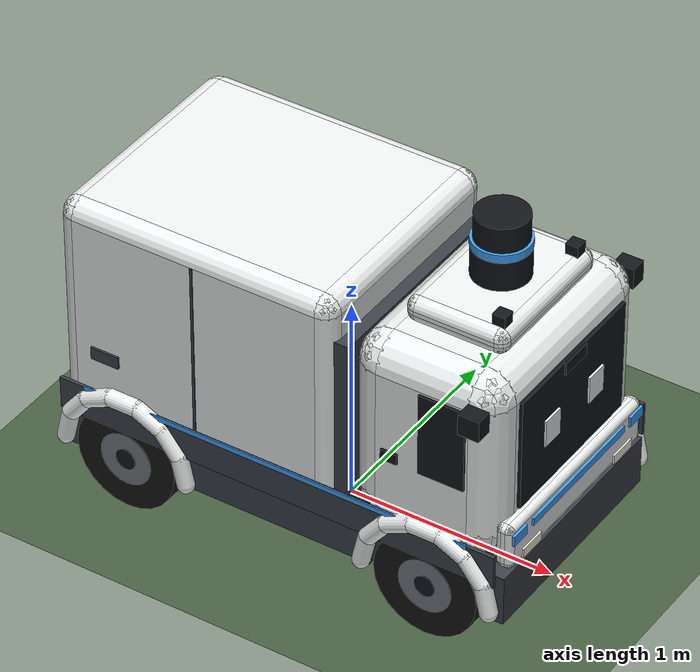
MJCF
<?xml version='1.0' encoding='utf-8'?>
<mujoco model="hakoniwa_car_world">
  <compiler angle="radian" autolimits="true" />
  <option timestep="0.002" gravity="0 0 -9.81" integrator="implicitfast" cone="elliptic" />
  <asset>
    <texture name="skybox" type="skybox" builtin="gradient" rgb1="0.45 0.65 0.95" rgb2="0.95 0.97 1.00" width="512" height="3072" />
    <texture name="ground_tex" type="2d" builtin="checker" rgb1="0.32 0.42 0.30" rgb2="0.24 0.32 0.22" width="512" height="512" />
    <material name="ground_mat" texture="ground_tex" texrepeat="12 12" reflectance="0.05" />
  </asset>
  <worldbody>
    <geom name="ground" type="plane" size="30 30 0.1" material="ground_mat" condim="4" friction="1.1 0.01 0.001" solref="0.01 1" solimp="0.9 0.95 0.001" />
    <light name="sun" directional="true" pos="0 0 100" dir="-0.3 -0.4 -1" diffuse="0.9 0.9 0.9" ambient="0.30 0.30 0.30" specular="0.15 0.15 0.15" />
    <light name="fill_light" directional="true" pos="0 0 50" dir="0.5 0.4 -1" diffuse="0.25 0.25 0.28" ambient="0.08 0.08 0.10" specular="0.05 0.05 0.05" />
    <body name="vehicle" pos="0 0 0.42">
      <freejoint name="base_freejoint" />
      <geom name="chassis_core_visual" type="box" pos="0 0 -0.12" size="1.06 0.38 0.13" rgba="0.23 0.25 0.28 1" contype="0" conaffinity="0" density="0" group="1" />
      <geom name="front_bumper_visual" type="box" pos="1.04 0 -0.13" size="0.06 0.55 0.12" rgba="0.23 0.25 0.28 1" contype="0" conaffinity="0" density="0" group="1" />
      <geom name="rear_bumper_visual" type="box" pos="-1.04 0 -0.13" size="0.06 0.55 0.12" rgba="0.23 0.25 0.28 1" contype="0" conaffinity="0" density="0" group="1" />
      <geom name="side_skirt_left_visual" type="box" pos="0 0.53 -0.1" size="0.47 0.05 0.1" rgba="0.23 0.25 0.28 1" contype="0" conaffinity="0" density="0" group="1" />
      <geom name="side_skirt_right_visual" type="box" pos="0 -0.53 -0.1" size="0.47 0.05 0.1" rgba="0.23 0.25 0.28 1" contype="0" conaffinity="0" density="0" group="1" />
      <geom name="side_band_left_visual" type="box" pos="0 0.594 0.05" size="1.08 0.008 0.08" rgba="0.23 0.25 0.28 1" contype="0" conaffinity="0" density="0" group="1" />
      <geom name="side_band_right_visual" type="box" pos="0 -0.594 0.05" size="1.08 0.008 0.08" rgba="0.23 0.25 0.28 1" contype="0" conaffinity="0" density="0" group="1" />
      <geom name="fender_front_left_0_visual" type="capsule" fromto="1.06 0.6 -0.17 1.0293 0.6 -0.035496" size="0.04" rgba="0.93 0.94 0.94 1" contype="0" conaffinity="0" density="0" group="1" />
      <geom name="fender_front_left_1_visual" type="capsule" fromto="1.0293 0.6 -0.035496 0.943282 0.6 0.0723678" size="0.04" rgba="0.93 0.94 0.94 1" contype="0" conaffinity="0" density="0" group="1" />
      <geom name="fender_front_left_2_visual" type="capsule" fromto="0.943282 0.6 0.0723678 0.818981 0.6 0.132228" size="0.04" rgba="0.93 0.94 0.94 1" contype="0" conaffinity="0" density="0" group="1" />
      <geom name="fender_front_left_3_visual" type="capsule" fromto="0.818981 0.6 0.132228 0.681019 0.6 0.132228" size="0.04" rgba="0.93 0.94 0.94 1" contype="0" conaffinity="0" density="0" group="1" />
      <geom name="fender_front_left_4_visual" type="capsule" fromto="0.681019 0.6 0.132228 0.556718 0.6 0.0723678" size="0.04" rgba="0.93 0.94 0.94 1" contype="0" conaffinity="0" density="0" group="1" />
      <geom name="fender_front_left_5_visual" type="capsule" fromto="0.556718 0.6 0.0723678 0.4707 0.6 -0.035496" size="0.04" rgba="0.93 0.94 0.94 1" contype="0" conaffinity="0" density="0" group="1" />
      <geom name="fender_front_left_6_visual" type="capsule" fromto="0.4707 0.6 -0.035496 0.44 0.6 -0.17" size="0.04" rgba="0.93 0.94 0.94 1" contype="0" conaffinity="0" density="0" group="1" />
      <geom name="fender_front_right_0_visual" type="capsule" fromto="1.06 -0.6 -0.17 1.0293 -0.6 -0.035496" size="0.04" rgba="0.93 0.94 0.94 1" contype="0" conaffinity="0" density="0" group="1" />
      <geom name="fender_front_right_1_visual" type="capsule" fromto="1.0293 -0.6 -0.035496 0.943282 -0.6 0.0723678" size="0.04" rgba="0.93 0.94 0.94 1" contype="0" conaffinity="0" density="0" group="1" />
      <geom name="fender_front_right_2_visual" type="capsule" fromto="0.943282 -0.6 0.0723678 0.818981 -0.6 0.132228" size="0.04" rgba="0.93 0.94 0.94 1" contype="0" conaffinity="0" density="0" group="1" />
      <geom name="fender_front_right_3_visual" type="capsule" fromto="0.818981 -0.6 0.132228 0.681019 -0.6 0.132228" size="0.04" rgba="0.93 0.94 0.94 1" contype="0" conaffinity="0" density="0" group="1" />
      <geom name="fender_front_right_4_visual" type="capsule" fromto="0.681019 -0.6 0.132228 0.556718 -0.6 0.0723678" size="0.04" rgba="0.93 0.94 0.94 1" contype="0" conaffinity="0" density="0" group="1" />
      <geom name="fender_front_right_5_visual" type="capsule" fromto="0.556718 -0.6 0.0723678 0.4707 -0.6 -0.035496" size="0.04" rgba="0.93 0.94 0.94 1" contype="0" conaffinity="0" density="0" group="1" />
      <geom name="fender_front_right_6_visual" type="capsule" fromto="0.4707 -0.6 -0.035496 0.44 -0.6 -0.17" size="0.04" rgba="0.93 0.94 0.94 1" contype="0" conaffinity="0" density="0" group="1" />
      <geom name="fender_rear_left_0_visual" type="capsule" fromto="-0.44 0.6 -0.17 -0.4707 0.6 -0.035496" size="0.04" rgba="0.93 0.94 0.94 1" contype="0" conaffinity="0" density="0" group="1" />
      <geom name="fender_rear_left_1_visual" type="capsule" fromto="-0.4707 0.6 -0.035496 -0.556718 0.6 0.0723678" size="0.04" rgba="0.93 0.94 0.94 1" contype="0" conaffinity="0" density="0" group="1" />
      <geom name="fender_rear_left_2_visual" type="capsule" fromto="-0.556718 0.6 0.0723678 -0.681019 0.6 0.132228" size="0.04" rgba="0.93 0.94 0.94 1" contype="0" conaffinity="0" density="0" group="1" />
      <geom name="fender_rear_left_3_visual" type="capsule" fromto="-0.681019 0.6 0.132228 -0.818981 0.6 0.132228" size="0.04" rgba="0.93 0.94 0.94 1" contype="0" conaffinity="0" density="0" group="1" />
      <geom name="fender_rear_left_4_visual" type="capsule" fromto="-0.818981 0.6 0.132228 -0.943282 0.6 0.0723678" size="0.04" rgba="0.93 0.94 0.94 1" contype="0" conaffinity="0" density="0" group="1" />
      <geom name="fender_rear_left_5_visual" type="capsule" fromto="-0.943282 0.6 0.0723678 -1.0293 0.6 -0.035496" size="0.04" rgba="0.93 0.94 0.94 1" contype="0" conaffinity="0" density="0" group="1" />
      <geom name="fender_rear_left_6_visual" type="capsule" fromto="-1.0293 0.6 -0.035496 -1.06 0.6 -0.17" size="0.04" rgba="0.93 0.94 0.94 1" contype="0" conaffinity="0" density="0" group="1" />
      <geom name="fender_rear_right_0_visual" type="capsule" fromto="-0.44 -0.6 -0.17 -0.4707 -0.6 -0.035496" size="0.04" rgba="0.93 0.94 0.94 1" contype="0" conaffinity="0" density="0" group="1" />
      <geom name="fender_rear_right_1_visual" type="capsule" fromto="-0.4707 -0.6 -0.035496 -0.556718 -0.6 0.0723678" size="0.04" rgba="0.93 0.94 0.94 1" contype="0" conaffinity="0" density="0" group="1" />
      <geom name="fender_rear_right_2_visual" type="capsule" fromto="-0.556718 -0.6 0.0723678 -0.681019 -0.6 0.132228" size="0.04" rgba="0.93 0.94 0.94 1" contype="0" conaffinity="0" density="0" group="1" />
      <geom name="fender_rear_right_3_visual" type="capsule" fromto="-0.681019 -0.6 0.132228 -0.818981 -0.6 0.132228" size="0.04" rgba="0.93 0.94 0.94 1" contype="0" conaffinity="0" density="0" group="1" />
      <geom name="fender_rear_right_4_visual" type="capsule" fromto="-0.818981 -0.6 0.132228 -0.943282 -0.6 0.0723678" size="0.04" rgba="0.93 0.94 0.94 1" contype="0" conaffinity="0" density="0" group="1" />
      <geom name="fender_rear_right_5_visual" type="capsule" fromto="-0.943282 -0.6 0.0723678 -1.0293 -0.6 -0.035496" size="0.04" rgba="0.93 0.94 0.94 1" contype="0" conaffinity="0" density="0" group="1" />
      <geom name="fender_rear_right_6_visual" type="capsule" fromto="-1.0293 -0.6 -0.035496 -1.06 -0.6 -0.17" size="0.04" rgba="0.93 0.94 0.94 1" contype="0" conaffinity="0" density="0" group="1" />
      <geom name="cab_x_visual" type="box" pos="0.7 0 0.47" size="0.36 0.42 0.32" rgba="0.93 0.94 0.94 1" contype="0" conaffinity="0" density="0" group="1" />
      <geom name="cab_y_visual" type="box" pos="0.7 0 0.47" size="0.22 0.56 0.32" rgba="0.93 0.94 0.94 1" contype="0" conaffinity="0" density="0" group="1" />
      <geom name="cab_z_visual" type="box" pos="0.7 0 0.47" size="0.22 0.42 0.46" rgba="0.93 0.94 0.94 1" contype="0" conaffinity="0" density="0" group="1" />
      <geom name="cab_edge0_visual" type="capsule" fromto="0.48 -0.42 0.15 0.92 -0.42 0.15" size="0.14" rgba="0.93 0.94 0.94 1" contype="0" conaffinity="0" density="0" group="1" />
      <geom name="cab_edge1_visual" type="capsule" fromto="0.48 -0.42 0.79 0.92 -0.42 0.79" size="0.14" rgba="0.93 0.94 0.94 1" contype="0" conaffinity="0" density="0" group="1" />
      <geom name="cab_edge2_visual" type="capsule" fromto="0.48 0.42 0.15 0.92 0.42 0.15" size="0.14" rgba="0.93 0.94 0.94 1" contype="0" conaffinity="0" density="0" group="1" />
      <geom name="cab_edge3_visual" type="capsule" fromto="0.48 0.42 0.79 0.92 0.42 0.79" size="0.14" rgba="0.93 0.94 0.94 1" contype="0" conaffinity="0" density="0" group="1" />
      <geom name="cab_edge4_visual" type="capsule" fromto="0.48 -0.42 0.15 0.48 0.42 0.15" size="0.14" rgba="0.93 0.94 0.94 1" contype="0" conaffinity="0" density="0" group="1" />
      <geom name="cab_edge5_visual" type="capsule" fromto="0.48 -0.42 0.79 0.48 0.42 0.79" size="0.14" rgba="0.93 0.94 0.94 1" contype="0" conaffinity="0" density="0" group="1" />
      <geom name="cab_edge6_visual" type="capsule" fromto="0.92 -0.42 0.15 0.92 0.42 0.15" size="0.14" rgba="0.93 0.94 0.94 1" contype="0" conaffinity="0" density="0" group="1" />
      <geom name="cab_edge7_visual" type="capsule" fromto="0.92 -0.42 0.79 0.92 0.42 0.79" size="0.14" rgba="0.93 0.94 0.94 1" contype="0" conaffinity="0" density="0" group="1" />
      <geom name="cab_edge8_visual" type="capsule" fromto="0.48 -0.42 0.15 0.48 -0.42 0.79" size="0.14" rgba="0.93 0.94 0.94 1" contype="0" conaffinity="0" density="0" group="1" />
      <geom name="cab_edge9_visual" type="capsule" fromto="0.48 0.42 0.15 0.48 0.42 0.79" size="0.14" rgba="0.93 0.94 0.94 1" contype="0" conaffinity="0" density="0" group="1" />
      <geom name="cab_edge10_visual" type="capsule" fromto="0.92 -0.42 0.15 0.92 -0.42 0.79" size="0.14" rgba="0.93 0.94 0.94 1" contype="0" conaffinity="0" density="0" group="1" />
      <geom name="cab_edge11_visual" type="capsule" fromto="0.92 0.42 0.15 0.92 0.42 0.79" size="0.14" rgba="0.93 0.94 0.94 1" contype="0" conaffinity="0" density="0" group="1" />
      <geom name="cab_nose_x_visual" type="box" pos="1.07 0 0.12" size="0.04 0.49 0.08" rgba="0.93 0.94 0.94 1" contype="0" conaffinity="0" density="0" group="1" />
      <geom name="cab_nose_y_visual" type="box" pos="1.07 0 0.12" size="0.01 0.52 0.08" rgba="0.93 0.94 0.94 1" contype="0" conaffinity="0" density="0" group="1" />
      <geom name="cab_nose_z_visual" type="box" pos="1.07 0 0.12" size="0.01 0.49 0.11" rgba="0.93 0.94 0.94 1" contype="0" conaffinity="0" density="0" group="1" />
      <geom name="cab_nose_edge0_visual" type="capsule" fromto="1.06 -0.49 0.04 1.08 -0.49 0.04" size="0.03" rgba="0.93 0.94 0.94 1" contype="0" conaffinity="0" density="0" group="1" />
      <geom name="cab_nose_edge1_visual" type="capsule" fromto="1.06 -0.49 0.2 1.08 -0.49 0.2" size="0.03" rgba="0.93 0.94 0.94 1" contype="0" conaffinity="0" density="0" group="1" />
      <geom name="cab_nose_edge2_visual" type="capsule" fromto="1.06 0.49 0.04 1.08 0.49 0.04" size="0.03" rgba="0.93 0.94 0.94 1" contype="0" conaffinity="0" density="0" group="1" />
      <geom name="cab_nose_edge3_visual" type="capsule" fromto="1.06 0.49 0.2 1.08 0.49 0.2" size="0.03" rgba="0.93 0.94 0.94 1" contype="0" conaffinity="0" density="0" group="1" />
      <geom name="cab_nose_edge4_visual" type="capsule" fromto="1.06 -0.49 0.04 1.06 0.49 0.04" size="0.03" rgba="0.93 0.94 0.94 1" contype="0" conaffinity="0" density="0" group="1" />
      <geom name="cab_nose_edge5_visual" type="capsule" fromto="1.06 -0.49 0.2 1.06 0.49 0.2" size="0.03" rgba="0.93 0.94 0.94 1" contype="0" conaffinity="0" density="0" group="1" />
      <geom name="cab_nose_edge6_visual" type="capsule" fromto="1.08 -0.49 0.04 1.08 0.49 0.04" size="0.03" rgba="0.93 0.94 0.94 1" contype="0" conaffinity="0" density="0" group="1" />
      <geom name="cab_nose_edge7_visual" type="capsule" fromto="1.08 -0.49 0.2 1.08 0.49 0.2" size="0.03" rgba="0.93 0.94 0.94 1" contype="0" conaffinity="0" density="0" group="1" />
      <geom name="cab_nose_edge8_visual" type="capsule" fromto="1.06 -0.49 0.04 1.06 -0.49 0.2" size="0.03" rgba="0.93 0.94 0.94 1" contype="0" conaffinity="0" density="0" group="1" />
      <geom name="cab_nose_edge9_visual" type="capsule" fromto="1.06 0.49 0.04 1.06 0.49 0.2" size="0.03" rgba="0.93 0.94 0.94 1" contype="0" conaffinity="0" density="0" group="1" />
      <geom name="cab_nose_edge10_visual" type="capsule" fromto="1.08 -0.49 0.04 1.08 -0.49 0.2" size="0.03" rgba="0.93 0.94 0.94 1" contype="0" conaffinity="0" density="0" group="1" />
      <geom name="cab_nose_edge11_visual" type="capsule" fromto="1.08 0.49 0.04 1.08 0.49 0.2" size="0.03" rgba="0.93 0.94 0.94 1" contype="0" conaffinity="0" density="0" group="1" />
      <geom name="windshield_visual" type="box" pos="1.065 0 0.52" size="0.012 0.4 0.27" rgba="0.07 0.08 0.10 1" contype="0" conaffinity="0" density="0" group="1" />
      <geom name="side_window_left_visual" type="box" pos="0.8 0.565 0.58" size="0.11 0.006 0.2" rgba="0.07 0.08 0.10 1" contype="0" conaffinity="0" density="0" group="1" />
      <geom name="side_window_right_visual" type="box" pos="0.8 -0.565 0.58" size="0.11 0.006 0.2" rgba="0.07 0.08 0.10 1" contype="0" conaffinity="0" density="0" group="1" />
      <geom name="eye_left_visual" type="box" pos="1.08 0.17 0.52" size="0.006 0.055 0.065" rgba="0.97 0.98 1.00 1" contype="0" conaffinity="0" density="0" group="1" />
      <geom name="eye_right_visual" type="box" pos="1.08 -0.17 0.52" size="0.006 0.055 0.065" rgba="0.97 0.98 1.00 1" contype="0" conaffinity="0" density="0" group="1" />
      <geom name="front_camera_visual" type="box" pos="1.08 0 0.76" size="0.006 0.08 0.03" rgba="0.07 0.08 0.10 1" contype="0" conaffinity="0" density="0" group="1" />
      <geom name="led_strip_visual" type="box" pos="1.115 0 0.17" size="0.006 0.36 0.018" rgba="0.25 0.65 1.00 1" contype="0" conaffinity="0" density="0" group="1" />
      <geom name="headlight_left_visual" type="box" pos="1.115 0.46 0.17" size="0.006 0.05 0.025" rgba="0.25 0.65 1.00 1" contype="0" conaffinity="0" density="0" group="1" />
      <geom name="headlight_right_visual" type="box" pos="1.115 -0.46 0.17" size="0.006 0.05 0.025" rgba="0.25 0.65 1.00 1" contype="0" conaffinity="0" density="0" group="1" />
      <geom name="head_lamp_left_visual" type="box" pos="1.112 0.36 0.05" size="0.006 0.07 0.022" rgba="1 0.97 0.86 1" contype="0" conaffinity="0" density="0" group="1" />
      <geom name="head_lamp_right_visual" type="box" pos="1.112 -0.36 0.05" size="0.006 0.07 0.022" rgba="1 0.97 0.86 1" contype="0" conaffinity="0" density="0" group="1" />
      <geom name="side_led_left_visual" type="box" pos="0 0.605 0.13" size="0.95 0.003 0.012" rgba="0.25 0.65 1.00 1" contype="0" conaffinity="0" density="0" group="1" />
      <geom name="side_led_right_visual" type="box" pos="0 -0.605 0.13" size="0.95 0.003 0.012" rgba="0.25 0.65 1.00 1" contype="0" conaffinity="0" density="0" group="1" />
      <geom name="side_camera_left_visual" type="box" pos="0.97 0.6 0.78" size="0.05 0.04 0.05" rgba="0.07 0.08 0.10 1" contype="0" conaffinity="0" density="0" group="1" />
      <geom name="side_camera_right_visual" type="box" pos="0.97 -0.6 0.78" size="0.05 0.04 0.05" rgba="0.07 0.08 0.10 1" contype="0" conaffinity="0" density="0" group="1" />
      <geom name="side_marker_left_visual" type="box" pos="0.55 0.565 0.4" size="0.04 0.006 0.025" rgba="0.07 0.08 0.10 1" contype="0" conaffinity="0" density="0" group="1" />
      <geom name="side_marker_right_visual" type="box" pos="0.55 -0.565 0.4" size="0.04 0.006 0.025" rgba="0.07 0.08 0.10 1" contype="0" conaffinity="0" density="0" group="1" />
      <geom name="roof_pod_x_visual" type="box" pos="0.72 0 0.99" size="0.24 0.31 0.01" rgba="0.93 0.94 0.94 1" contype="0" conaffinity="0" density="0" group="1" />
      <geom name="roof_pod_y_visual" type="box" pos="0.72 0 0.99" size="0.19 0.36 0.01" rgba="0.93 0.94 0.94 1" contype="0" conaffinity="0" density="0" group="1" />
      <geom name="roof_pod_z_visual" type="box" pos="0.72 0 0.99" size="0.19 0.31 0.06" rgba="0.93 0.94 0.94 1" contype="0" conaffinity="0" density="0" group="1" />
      <geom name="roof_pod_edge0_visual" type="capsule" fromto="0.53 -0.31 0.98 0.91 -0.31 0.98" size="0.05" rgba="0.93 0.94 0.94 1" contype="0" conaffinity="0" density="0" group="1" />
      <geom name="roof_pod_edge1_visual" type="capsule" fromto="0.53 -0.31 1 0.91 -0.31 1" size="0.05" rgba="0.93 0.94 0.94 1" contype="0" conaffinity="0" density="0" group="1" />
      <geom name="roof_pod_edge2_visual" type="capsule" fromto="0.53 0.31 0.98 0.91 0.31 0.98" size="0.05" rgba="0.93 0.94 0.94 1" contype="0" conaffinity="0" density="0" group="1" />
      <geom name="roof_pod_edge3_visual" type="capsule" fromto="0.53 0.31 1 0.91 0.31 1" size="0.05" rgba="0.93 0.94 0.94 1" contype="0" conaffinity="0" density="0" group="1" />
      <geom name="roof_pod_edge4_visual" type="capsule" fromto="0.53 -0.31 0.98 0.53 0.31 0.98" size="0.05" rgba="0.93 0.94 0.94 1" contype="0" conaffinity="0" density="0" group="1" />
      <geom name="roof_pod_edge5_visual" type="capsule" fromto="0.53 -0.31 1 0.53 0.31 1" size="0.05" rgba="0.93 0.94 0.94 1" contype="0" conaffinity="0" density="0" group="1" />
      <geom name="roof_pod_edge6_visual" type="capsule" fromto="0.91 -0.31 0.98 0.91 0.31 0.98" size="0.05" rgba="0.93 0.94 0.94 1" contype="0" conaffinity="0" density="0" group="1" />
      <geom name="roof_pod_edge7_visual" type="capsule" fromto="0.91 -0.31 1 0.91 0.31 1" size="0.05" rgba="0.93 0.94 0.94 1" contype="0" conaffinity="0" density="0" group="1" />
      <geom name="roof_pod_edge8_visual" type="capsule" fromto="0.53 -0.31 0.98 0.53 -0.31 1" size="0.05" rgba="0.93 0.94 0.94 1" contype="0" conaffinity="0" density="0" group="1" />
      <geom name="roof_pod_edge9_visual" type="capsule" fromto="0.53 0.31 0.98 0.53 0.31 1" size="0.05" rgba="0.93 0.94 0.94 1" contype="0" conaffinity="0" density="0" group="1" />
      <geom name="roof_pod_edge10_visual" type="capsule" fromto="0.91 -0.31 0.98 0.91 -0.31 1" size="0.05" rgba="0.93 0.94 0.94 1" contype="0" conaffinity="0" density="0" group="1" />
      <geom name="roof_pod_edge11_visual" type="capsule" fromto="0.91 0.31 0.98 0.91 0.31 1" size="0.05" rgba="0.93 0.94 0.94 1" contype="0" conaffinity="0" density="0" group="1" />
      <geom name="roof_sensor_left_visual" type="box" pos="0.9 0.28 1.07" size="0.03 0.03 0.03" rgba="0.07 0.08 0.10 1" contype="0" conaffinity="0" density="0" group="1" />
      <geom name="roof_sensor_right_visual" type="box" pos="0.9 -0.28 1.07" size="0.03 0.03 0.03" rgba="0.07 0.08 0.10 1" contype="0" conaffinity="0" density="0" group="1" />
      <geom name="lidar_base_visual" type="cylinder" pos="0.72 0 1.12" size="0.13 0.07" rgba="0.07 0.08 0.10 1" contype="0" conaffinity="0" density="0" group="1" />
      <geom name="lidar_ring_visual" type="cylinder" pos="0.72 0 1.21" size="0.132 0.02" rgba="0.25 0.65 1.00 1" contype="0" conaffinity="0" density="0" group="1" />
      <geom name="lidar_top_visual" type="cylinder" pos="0.72 0 1.29" size="0.12 0.06" rgba="0.07 0.08 0.10 1" contype="0" conaffinity="0" density="0" group="1" />
      <geom name="pillar_visual" type="box" pos="0.3 0 0.43" size="0.04 0.54 0.42" rgba="0.23 0.25 0.28 1" contype="0" conaffinity="0" density="0" group="1" />
      <geom name="cargo_x_visual" type="box" pos="-0.4 0 0.53" size="0.68 0.5 0.44" rgba="0.93 0.94 0.94 1" contype="0" conaffinity="0" density="0" group="1" />
      <geom name="cargo_y_visual" type="box" pos="-0.4 0 0.53" size="0.6 0.58 0.44" rgba="0.93 0.94 0.94 1" contype="0" conaffinity="0" density="0" group="1" />
      <geom name="cargo_z_visual" type="box" pos="-0.4 0 0.53" size="0.6 0.5 0.52" rgba="0.93 0.94 0.94 1" contype="0" conaffinity="0" density="0" group="1" />
      <geom name="cargo_edge0_visual" type="capsule" fromto="-1 -0.5 0.09 0.2 -0.5 0.09" size="0.08" rgba="0.93 0.94 0.94 1" contype="0" conaffinity="0" density="0" group="1" />
      <geom name="cargo_edge1_visual" type="capsule" fromto="-1 -0.5 0.97 0.2 -0.5 0.97" size="0.08" rgba="0.93 0.94 0.94 1" contype="0" conaffinity="0" density="0" group="1" />
      <geom name="cargo_edge2_visual" type="capsule" fromto="-1 0.5 0.09 0.2 0.5 0.09" size="0.08" rgba="0.93 0.94 0.94 1" contype="0" conaffinity="0" density="0" group="1" />
      <geom name="cargo_edge3_visual" type="capsule" fromto="-1 0.5 0.97 0.2 0.5 0.97" size="0.08" rgba="0.93 0.94 0.94 1" contype="0" conaffinity="0" density="0" group="1" />
      <geom name="cargo_edge4_visual" type="capsule" fromto="-1 -0.5 0.09 -1 0.5 0.09" size="0.08" rgba="0.93 0.94 0.94 1" contype="0" conaffinity="0" density="0" group="1" />
      <geom name="cargo_edge5_visual" type="capsule" fromto="-1 -0.5 0.97 -1 0.5 0.97" size="0.08" rgba="0.93 0.94 0.94 1" contype="0" conaffinity="0" density="0" group="1" />
      <geom name="cargo_edge6_visual" type="capsule" fromto="0.2 -0.5 0.09 0.2 0.5 0.09" size="0.08" rgba="0.93 0.94 0.94 1" contype="0" conaffinity="0" density="0" group="1" />
      <geom name="cargo_edge7_visual" type="capsule" fromto="0.2 -0.5 0.97 0.2 0.5 0.97" size="0.08" rgba="0.93 0.94 0.94 1" contype="0" conaffinity="0" density="0" group="1" />
      <geom name="cargo_edge8_visual" type="capsule" fromto="-1 -0.5 0.09 -1 -0.5 0.97" size="0.08" rgba="0.93 0.94 0.94 1" contype="0" conaffinity="0" density="0" group="1" />
      <geom name="cargo_edge9_visual" type="capsule" fromto="-1 0.5 0.09 -1 0.5 0.97" size="0.08" rgba="0.93 0.94 0.94 1" contype="0" conaffinity="0" density="0" group="1" />
      <geom name="cargo_edge10_visual" type="capsule" fromto="0.2 -0.5 0.09 0.2 -0.5 0.97" size="0.08" rgba="0.93 0.94 0.94 1" contype="0" conaffinity="0" density="0" group="1" />
      <geom name="cargo_edge11_visual" type="capsule" fromto="0.2 0.5 0.09 0.2 0.5 0.97" size="0.08" rgba="0.93 0.94 0.94 1" contype="0" conaffinity="0" density="0" group="1" />
      <geom name="cargo_seam_left_visual" type="box" pos="-0.4 0.582 0.55" size="0.006 0.003 0.42" rgba="0.23 0.25 0.28 1" contype="0" conaffinity="0" density="0" group="1" />
      <geom name="cargo_seam_right_visual" type="box" pos="-0.4 -0.582 0.55" size="0.006 0.003 0.42" rgba="0.23 0.25 0.28 1" contype="0" conaffinity="0" density="0" group="1" />
      <geom name="cargo_handle_left_visual" type="box" pos="-0.85 0.585 0.32" size="0.07 0.005 0.03" rgba="0.23 0.25 0.28 1" contype="0" conaffinity="0" density="0" group="1" />
      <geom name="cargo_handle_right_visual" type="box" pos="-0.85 -0.585 0.32" size="0.07 0.005 0.03" rgba="0.23 0.25 0.28 1" contype="0" conaffinity="0" density="0" group="1" />
      <geom name="rear_door_frame_visual" type="box" pos="-1.082 0 0.55" size="0.003 0.44 0.42" rgba="0.23 0.25 0.28 1" contype="0" conaffinity="0" density="0" group="1" />
      <geom name="rear_door_visual" type="box" pos="-1.086 0 0.55" size="0.003 0.42 0.4" rgba="0.88 0.89 0.90 1" contype="0" conaffinity="0" density="0" group="1" />
      <geom name="rear_handle_visual" type="box" pos="-1.092 0 0.3" size="0.004 0.08 0.03" rgba="0.23 0.25 0.28 1" contype="0" conaffinity="0" density="0" group="1" />
      <geom name="tail_light_left_visual" type="box" pos="-1.09 0.475 0.55" size="0.004 0.02 0.14" rgba="0.85 0.12 0.10 1" contype="0" conaffinity="0" density="0" group="1" />
      <geom name="tail_light_right_visual" type="box" pos="-1.09 -0.475 0.55" size="0.004 0.02 0.14" rgba="0.85 0.12 0.10 1" contype="0" conaffinity="0" density="0" group="1" />
      <geom name="rear_reflector_left_visual" type="box" pos="-1.1 0.38 -0.1" size="0.004 0.03 0.05" rgba="0.85 0.12 0.10 1" contype="0" conaffinity="0" density="0" group="1" />
      <geom name="rear_reflector_right_visual" type="box" pos="-1.1 -0.38 -0.1" size="0.004 0.03 0.05" rgba="0.85 0.12 0.10 1" contype="0" conaffinity="0" density="0" group="1" />
      <body name="front_left_steer" pos="0.75 0.5 -0.17">
        <inertial pos="0 0 0" mass="0.3" diaginertia="0.001 0.001 0.001" />
        <joint name="front_left_steer_joint" type="hinge" axis="0 0 1" range="-0.80 0.80" damping="0.05" armature="0.01" />
        <body name="front_left_wheel">
          <joint name="front_left_wheel_joint" type="hinge" axis="0 1 0" damping="0.05" armature="0.01" />
          <geom name="front_left_tire_visual" type="cylinder" pos="0 0 0" size="0.25 0.1" euler="1.57079632679 0 0" rgba="0.08 0.08 0.08 1" contype="0" conaffinity="0" density="0" group="1" />
          <geom name="front_left_hub_visual" type="cylinder" pos="0 0 0" size="0.13 0.102" euler="1.57079632679 0 0" rgba="0.45 0.47 0.50 1" contype="0" conaffinity="0" density="0" group="1" />
          <geom name="front_left_cap_visual" type="cylinder" pos="0 0 0" size="0.05 0.104" euler="1.57079632679 0 0" rgba="0.07 0.08 0.10 1" contype="0" conaffinity="0" density="0" group="1" />
          <geom name="front_left_tire" type="cylinder" size="0.25 0.04" euler="1.57079632679 0 0" mass="7" rgba="0 0 0 0" condim="3" friction="1.6 0.02 0.002" solref="0.01 1" solimp="0.9 0.95 0.001" />
        </body>
      </body>
      <body name="front_right_steer" pos="0.75 -0.5 -0.17">
        <inertial pos="0 0 0" mass="0.3" diaginertia="0.001 0.001 0.001" />
        <joint name="front_right_steer_joint" type="hinge" axis="0 0 1" range="-0.80 0.80" damping="0.05" armature="0.01" />
        <body name="front_right_wheel">
          <joint name="front_right_wheel_joint" type="hinge" axis="0 1 0" damping="0.05" armature="0.01" />
          <geom name="front_right_tire_visual" type="cylinder" pos="0 0 0" size="0.25 0.1" euler="1.57079632679 0 0" rgba="0.08 0.08 0.08 1" contype="0" conaffinity="0" density="0" group="1" />
          <geom name="front_right_hub_visual" type="cylinder" pos="0 0 0" size="0.13 0.102" euler="1.57079632679 0 0" rgba="0.45 0.47 0.50 1" contype="0" conaffinity="0" density="0" group="1" />
          <geom name="front_right_cap_visual" type="cylinder" pos="0 0 0" size="0.05 0.104" euler="1.57079632679 0 0" rgba="0.07 0.08 0.10 1" contype="0" conaffinity="0" density="0" group="1" />
          <geom name="front_right_tire" type="cylinder" size="0.25 0.04" euler="1.57079632679 0 0" mass="7" rgba="0 0 0 0" condim="3" friction="1.6 0.02 0.002" solref="0.01 1" solimp="0.9 0.95 0.001" />
        </body>
      </body>
      <body name="rear_left_wheel" pos="-0.75 0.5 -0.17">
        <joint name="rear_left_wheel_joint" type="hinge" axis="0 1 0" damping="0.05" armature="0.01" />
        <geom name="rear_left_tire_visual" type="cylinder" pos="0 0 0" size="0.25 0.1" euler="1.57079632679 0 0" rgba="0.08 0.08 0.08 1" contype="0" conaffinity="0" density="0" group="1" />
        <geom name="rear_left_hub_visual" type="cylinder" pos="0 0 0" size="0.13 0.102" euler="1.57079632679 0 0" rgba="0.45 0.47 0.50 1" contype="0" conaffinity="0" density="0" group="1" />
        <geom name="rear_left_cap_visual" type="cylinder" pos="0 0 0" size="0.05 0.104" euler="1.57079632679 0 0" rgba="0.07 0.08 0.10 1" contype="0" conaffinity="0" density="0" group="1" />
        <geom name="rear_left_tire" type="cylinder" size="0.25 0.04" euler="1.57079632679 0 0" mass="7" rgba="0 0 0 0" condim="3" friction="1.6 0.02 0.002" solref="0.01 1" solimp="0.9 0.95 0.001" />
      </body>
      <body name="rear_right_wheel" pos="-0.75 -0.5 -0.17">
        <joint name="rear_right_wheel_joint" type="hinge" axis="0 1 0" damping="0.05" armature="0.01" />
        <geom name="rear_right_tire_visual" type="cylinder" pos="0 0 0" size="0.25 0.1" euler="1.57079632679 0 0" rgba="0.08 0.08 0.08 1" contype="0" conaffinity="0" density="0" group="1" />
        <geom name="rear_right_hub_visual" type="cylinder" pos="0 0 0" size="0.13 0.102" euler="1.57079632679 0 0" rgba="0.45 0.47 0.50 1" contype="0" conaffinity="0" density="0" group="1" />
        <geom name="rear_right_cap_visual" type="cylinder" pos="0 0 0" size="0.05 0.104" euler="1.57079632679 0 0" rgba="0.07 0.08 0.10 1" contype="0" conaffinity="0" density="0" group="1" />
        <geom name="rear_right_tire" type="cylinder" size="0.25 0.04" euler="1.57079632679 0 0" mass="7" rgba="0 0 0 0" condim="3" friction="1.6 0.02 0.002" solref="0.01 1" solimp="0.9 0.95 0.001" />
      </body>
      <geom name="chassis_collision" type="box" pos="0 0 -0.12" size="1.06 0.38 0.13" mass="270" rgba="0.18 0.22 0.24 1" condim="4" friction="1.1 0.01 0.001" solref="0.01 1" solimp="0.9 0.95 0.001" />
      <geom name="body_collision" type="box" pos="-0.01 0 0.53" size="1.09 0.58 0.52" density="0" rgba="0 0 0 0" condim="4" friction="1.1 0.01 0.001" solref="0.01 1" solimp="0.9 0.95 0.001" />
      <geom name="lidar_collision" type="cylinder" pos="0.72 0 1.20" size="0.13 0.15" density="0" rgba="0 0 0 0" condim="4" friction="1.1 0.01 0.001" solref="0.01 1" solimp="0.9 0.95 0.001" />
    </body>
  </worldbody>
  <actuator>
    <position name="front_left_steer_motor" joint="front_left_steer_joint" ctrllimited="true" ctrlrange="-0.8 0.8" kp="1500" kv="70" />
    <position name="front_right_steer_motor" joint="front_right_steer_joint" ctrllimited="true" ctrlrange="-0.8 0.8" kp="1500" kv="70" />
    <velocity name="rear_left_wheel_motor" joint="rear_left_wheel_joint" ctrllimited="true" ctrlrange="-120 120" kv="300" />
    <velocity name="rear_right_wheel_motor" joint="rear_right_wheel_joint" ctrllimited="true" ctrlrange="-120 120" kv="300" />
  </actuator>
  <contact>
    <exclude body1="vehicle" body2="front_left_wheel" />
    <exclude body1="vehicle" body2="front_right_wheel" />
  </contact>
</mujoco>
